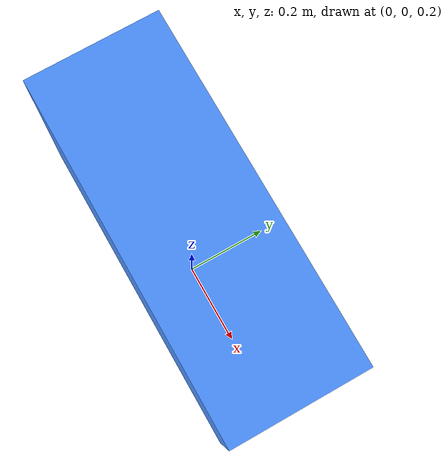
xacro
<?xml version="1.0"?>

<robot xmlns:xacro="http://www.ros.org/wiki/xacro" name="Canary">

  <!-- Color Macros -->
  <material name="red">
    <color rgba="1.0 0 0 1.0"/>
  </material>
  <material name="blue">
    <color rgba="0.3 0.57 1. 1."/>
  </material>

  <!-- Base Properties -->
  <xacro:property name="body_length" value="0.8" />
  <xacro:property name="body_width" value="0.3" />
  <xacro:property name="body_height" value="0.5" />

  <link name="world">
  </link>

  <joint name="world_joint" type="fixed">
      <origin xyz="0 0 0.5" rpy="0 0 0" />
      <parent link="world" />
      <child link="base_link" />
  </joint>

  <!-- Base Link -->
  <link name="base_link">
    <visual>
      <origin xyz="0 0 0" rpy="0 0 0" />
      <geometry>
        <box size="${body_length} ${body_width} ${body_height}"/>
      </geometry>
      <material name="blue"/>
    </visual>
  </link>

  <!-- Front Left Wing Link -->

  <!-- Front Right Wing Link -->

  <!-- Back Left Wing Link -->

  <!-- Back Right Wing Link -->

  <!-- IMU Link -->
  <link name="imu_link">
  </link>
  <joint name="imu_joint" type="fixed">
    <parent link="base_link"/>
    <child link="imu_link"/>
    <origin xyz="0 0 0"/>
  </joint>

  <!-- Lidar above on base_link-->
  <link name="laser_frame">
  </link>
  <joint name="lidar_joint" type="fixed">
    <parent link="base_link"/>
    <child link="laser_frame"/>
    <origin xyz="0 0 0.06"/>
  </joint>

</robot>
